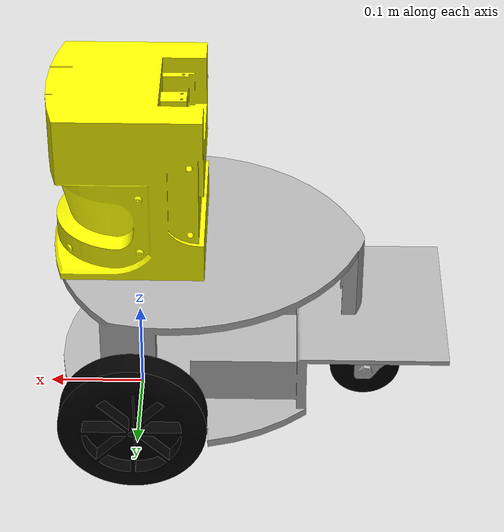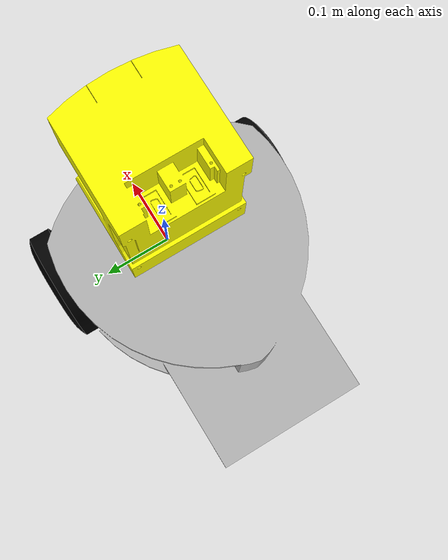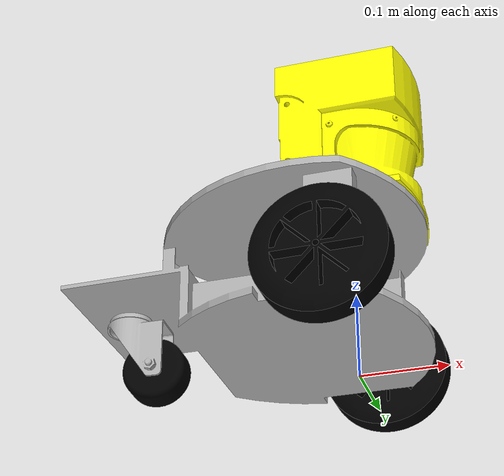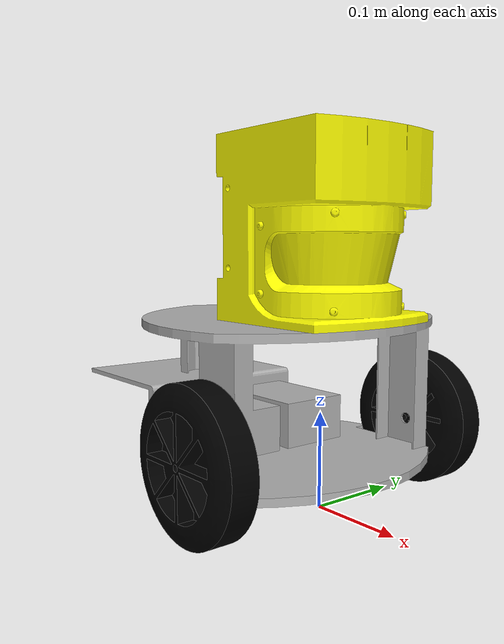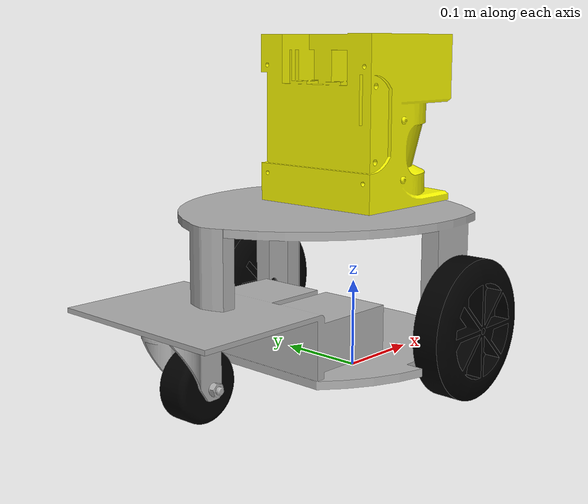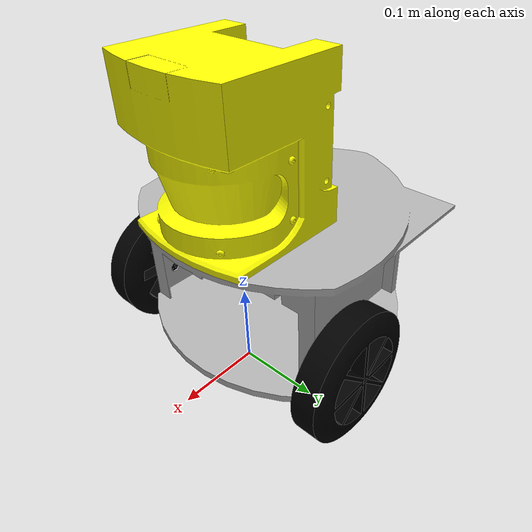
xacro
<?xml version="1.0" ?>
<robot name="tom_3d" xmlns:xacro="http://www.ros.org/wiki/xacro">

  <!-- MATERIALS -->
  <xacro:include filename="$(find tom_3d_simulation)/urdf/xacros/tom_3d_materials.xacro" />

  <!-- BODY -->
  <xacro:include filename="$(find tom_3d_simulation)/urdf/xacros/tom_3d_body.xacro" />

  <!-- WHEELS -->
  <xacro:include filename="$(find tom_3d_simulation)/urdf/xacros/tom_3d_leftwheel.xacro" />

  <!-- WHEELS -->
  <xacro:include filename="$(find tom_3d_simulation)/urdf/xacros/tom_3d_rightwheel.xacro" />

  <!-- SENSORS  -->
  <xacro:include filename="$(find tom_3d_simulation)/urdf/xacros/sick_pls.xacro" />

  <!-- CASTER WHEELS -->
  <xacro:include filename="$(find tom_3d_simulation)/urdf/xacros/tom_3d_caster_frame.xacro" />

  <xacro:include filename="$(find tom_3d_simulation)/urdf/xacros/tom_3d_caster_wheel.xacro" />

  <!-- Base Macro-->
  <xacro:tom_3d_base name="base_link">
  </xacro:tom_3d_base>

  <!-- Wheel Macro -->
  <xacro:tom_3d_leftwheel name="left_wheel" parent="base_link">
  </xacro:tom_3d_leftwheel>

  <xacro:tom_3d_rightwheel name="right_wheel" parent="base_link">
  </xacro:tom_3d_rightwheel>

  <!-- Sensors-->
  <xacro:sick_laser_scanner name="sick_pls" parent="base_link">
  </xacro:sick_laser_scanner>

    <!-- Caster Wheel Macro -->
  <xacro:tom_3d_caster_frame name="caster_frame" parent="base_link">
  </xacro:tom_3d_caster_frame>

  <xacro:tom_3d_caster_wheel name="caster_wheel" parent="caster_frame_link">
  </xacro:tom_3d_caster_wheel>

</robot>

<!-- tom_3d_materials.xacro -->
<robot name="tom_3d" xmlns:xacro="http://www.ros.org/wiki/xacro">

  <material name="tom_3d/Black">
    <color rgba="0.0 0.0 0.0 1.0"/>
  </material>

  <material name="tom_3d/Blue">
    <color rgba="0.0 0.0 0.8 1.0"/>
  </material>

  <material name="tom_3d/Green">
    <color rgba="0.0 0.8 0.0 1.0"/>
  </material>

  <material name="tom_3d/Grey">
    <color rgba="0.7 0.7 0.7 1.0"/>
  </material>

  <material name="tom_3d/Grey2">
    <color rgba="0.9 0.9 0.9 1.0"/>
  </material>

  <material name="tom_3d/Red">
    <color rgba="0.8 0.0 0.0 1.0"/>
  </material>

  <material name="tom_3d/White">
    <color rgba="1.0 1.0 1.0 1.0"/>
  </material>

  <material name="tom_3d/Yellow">
    <color rgba="1.0 1.0 0 10"/>
  </material>
</robot>

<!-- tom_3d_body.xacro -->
<robot xmlns:xacro="http://www.ros.org/wiki/xacro" name="tom_3d">
  <xacro:macro name="tom_3d_base" params="name ">
    <link name="${name}">
      <inertial>
       <origin
        xyz="-0.17709 -0.00065294 0.16037"
        rpy="0 0 0" />
       <mass
        value="12.377" />
       <inertia
        ixx="0.5769"
        ixy="0.0002763"
        ixz="-0.041954"
        iyy="0.58042"
        iyz="0.0002722"
        izz="0.1142" />
      </inertial>
      <visual>
        <origin xyz="0.08339 0 0.0395" rpy="0 0 0" />
        <geometry>
            <mesh filename="package://tom_3d_simulation/urdf/meshes/base_link.STL"/>
        </geometry>
        <material name="tom_3d/Grey"/>
      </visual>
      <collision>
        <origin xyz="0 0 0.0395" rpy="0 0 0" />
        <geometry>
	<!--cylinder radius="0.17" length = "0.7" /-->
          <mesh
		filename="package://tom_3d_simulation/urdf/meshes/base_link.STL"/>
        </geometry>
      </collision>
    </link>
  </xacro:macro>
</robot>

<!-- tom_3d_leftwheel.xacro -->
<robot xmlns:xacro="http://www.ros.org/wiki/xacro" name="tom_3d">
  <xacro:macro name="tom_3d_leftwheel" params="name parent">
   <joint name="${name}_joint" type="continuous">
    <origin
      xyz="-0.00076 0.1534 0.075"
      rpy="-4.2563E-44 0 0" />
    <axis xyz="0 1 0"/>
    <parent link="${parent}"/>
    <child link="${name}_link"/>
    <limit effort="30.0" velocity="1.0"/>
    <joint_properties damping="1.0" friction="0.2"/>
   </joint>
   <link name="${name}_link" type="wheel">
    <inertial>
      <origin
        xyz="-7.2741E-08 7.9842E-09 7.1084E-08"
        rpy="0 0 0" />
      <mass
        value="0.47973" />
      <inertia
        ixx="0.0008385"
        ixy="3.881E-10"
        ixz="-3.4742E-08"
        iyy="0.0015698"
        iyz="-1.1674E-09"
        izz="0.00083856" />
    </inertial>
    <visual>
     <origin xyz="0 0 0" rpy="0 0 0" />
     <geometry>
        <mesh filename="package://tom_3d_simulation/urdf/meshes/left_wheel_Link.STL"/>
     </geometry>
     <material name="tom_3d/Black" />
    </visual>
    <collision>
     <origin xyz="0 0 0" rpy="0 0 0" />
     <geometry>
        <!--cylinder radius="0.075" length="0.042"/-->
        <mesh filename="package://tom_3d_simulation/urdf/meshes/left_wheel_Link.STL"/>
     </geometry>
    </collision>
   </link>
  </xacro:macro>
</robot>

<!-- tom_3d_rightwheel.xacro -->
<robot xmlns:xacro="http://www.ros.org/wiki/xacro" name="tom_3d">
  <xacro:macro name="tom_3d_rightwheel" params="name parent">
   <joint name="${name}_joint" type="continuous">
    <origin
      xyz="-0.00076 -0.1534 0.075"
      rpy="-4.2563E-44 0 0" />
    <axis xyz="0 1 0"/>
    <parent link="${parent}"/>
    <child link="${name}_link"/>
    <limit effort="30.0" velocity="1.0"/>
    <joint_properties damping="1.0" friction="0.2"/>
   </joint>
   <link name="${name}_link" type="wheel">
    <inertial>
      <origin
        xyz="7.2151E-08 -7.9842E-09 7.1683E-08"
        rpy="0 0 0" />
      <mass
        value="0.47973" />
      <inertia
        ixx="0.0008385"
        ixy="3.7844E-10"
        ixz="3.4244E-08"
        iyy="0.0015698"
        iyz="1.1706E-09"
        izz="0.00083856" />
    </inertial>
    <visual>
     <origin xyz="0 0 0" rpy="0 0 0" />
     <geometry>
        <mesh filename="package://tom_3d_simulation/urdf/meshes/right_wheel_Link.STL"/>
     </geometry>
     <material name="tom_3d/Black" />
    </visual>
    <collision>
     <origin xyz="0 0 0" rpy="0 0 0" />
     <geometry>
        <!--cylinder radius="0.075" length="0.042"/-->
        <mesh filename="package://tom_3d_simulation/urdf/meshes/right_wheel_Link.STL"/>
     </geometry>
    </collision>
   </link>
  </xacro:macro>
</robot>

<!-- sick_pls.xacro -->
<robot xmlns:xacro="http://www.ros.org/wiki/xacro" name="tom_3d">
  <xacro:macro name="sick_laser_scanner" params="name parent">
    <joint name="${name}_joint" type="fixed">
      <axis xyz="0 0 0" />
      <origin
      xyz="0.04839 -0.00057363 0.257"
      rpy="-6.983E-15 -8.3333E-10 2.9167E-09" />
      <parent link="${parent}"/>
      <child link="${name}_link"/>
    </joint>
    <link name="${name}_link" type="laser">
      <inertial>
       <origin
        xyz="0.07464 2.9656E-09 0.0005964"
        rpy="0 0 0" />
      <mass
        value="4.803" />
      <inertia
        ixx="0.022714"
        ixy="-6.4301E-09"
        ixz="-0.0016489"
        iyy="0.022161"
        iyz="2.6112E-09"
        izz="0.016889" />
      </inertial>
      <visual>
        <origin xyz="-0.12 0 0.03" rpy="0 0 0" />
        <geometry>
          <mesh filename="package://tom_3d_simulation/urdf/meshes/sick_pls_Link.STL"/>
        </geometry>
        <material name="tom_3d/Yellow" />
      </visual>
      <collision>
        <origin xyz="-0.12 0 0.03" rpy="0 0 0" />
        <geometry>
          <mesh filename="package://tom_3d_simulation/urdf/meshes/sick_pls_Link.STL"/>
        </geometry>
      </collision>
    </link>
  </xacro:macro>
</robot>

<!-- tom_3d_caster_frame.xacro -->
<robot xmlns:xacro="http://www.ros.org/wiki/xacro" name="tom_3d">

  <xacro:macro name="tom_3d_caster_frame" params="name parent">
   <link name="${name}_link">
     <inertial>
      <origin
        xyz="-0.00055887 -0.028892 0.019123"
        rpy="0 0 0" />
      <mass
        value="0.075875" />
      <inertia
        ixx="7.155E-05"
        ixy="-1.5111E-06"
        ixz="6.2761E-07"
        iyy="5.4831E-05"
        iyz="1.9534E-05"
        izz="7.4518E-05" />
     </inertial>
     <visual>
      <origin xyz="0 0 0" rpy="0 0 0" />
      <geometry>
         <mesh filename="package://tom_3d_simulation/urdf/meshes/caster_frame_Link.STL"/>
      </geometry>
      <material name="tom_3d/Grey" />
     </visual>
     <collision>
      <origin xyz="0 0 0" rpy="0 0 0" />
      <geometry>
        <mesh filename="package://tom_3d_simulation/urdf/meshes/caster_frame_Link.STL"/>
      </geometry>
     </collision>
   </link>
   <joint name="${name}_joint" type="continuous">
     <origin
      xyz="-0.27411 0 0.102114"
      rpy="1.5708 6.9774E-15 1.6109" />
     <axis xyz="0 1 0" />
     <parent link="${parent}" />
     <child link="${name}_link" />
   </joint>
  </xacro:macro>
</robot>

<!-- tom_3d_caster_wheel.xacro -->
<robot xmlns:xacro="http://www.ros.org/wiki/xacro" name="tom_3d">

  <xacro:macro name="tom_3d_caster_wheel" params="name parent">
   <link name="${name}_link" type="wheel">
     <inertial>
       <origin
        xyz="7.2411E-08 -1.7197E-07 3.4401E-08"
        rpy="0 0 0" />
      <mass
        value="0.15248" />
      <inertia
        ixx="6.8521E-05"
        ixy="8.1003E-11"
        ixz="2.3672E-10"
        iyy="0.00010566"
        iyz="-7.8553E-11"
        izz="6.8522E-05" />
     </inertial>
     <visual>
      <origin xyz="0 0 0" rpy="0 0 0" />
      <geometry>
         <mesh filename="package://tom_3d_simulation/urdf/meshes/caster_wheel_Link.STL"/>
      </geometry>
      <material name="tom_3d/Black" />
     </visual>
     <collision>
      <origin xyz="0 0 0" rpy="0 0 0" />
      <geometry>
        <mesh filename="package://tom_3d_simulation/urdf/meshes/caster_wheel_Link.STL"/>
      </geometry>
     </collision>
   </link>
   <joint name="${name}_joint" type="continuous">
     <origin
      xyz="0 -0.064604 0.034"
      rpy="0 0 1.5708" />
     <axis xyz="0 -1 0" />
     <parent link="${parent}" />
     <child link="${name}_link" />
   </joint>
  </xacro:macro>
</robot>
